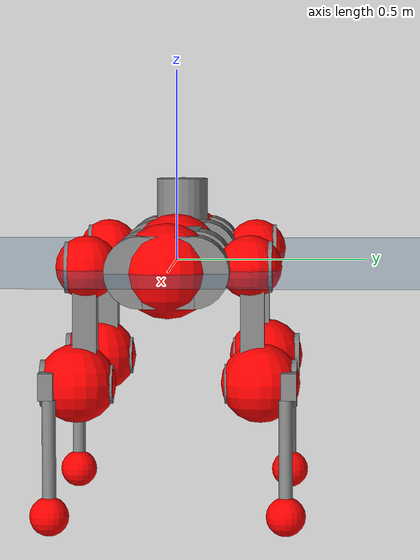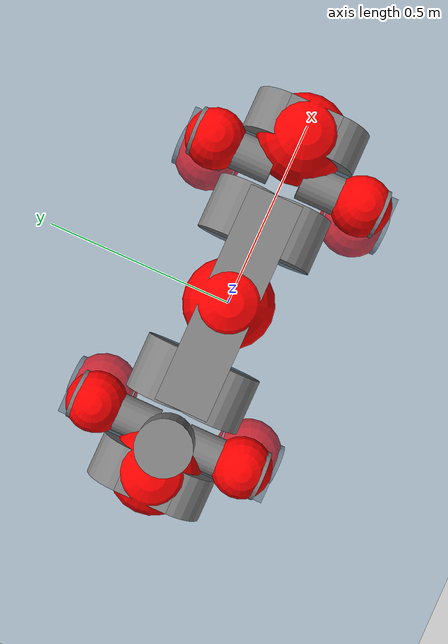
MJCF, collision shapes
<mujoco model="anymal_c">
  <compiler angle="radian" assetdir="assets" balanceinertia="true" inertiafromgeom="false"/>

  <option timestep="0.005" density="1.2" viscosity="2e-05"/>

  <size nkey="1"/>

  <visual>
    <quality shadowsize="8192"/>
    <map shadowclip="0.5"/>
  </visual>

  <default>
    <default class="/">
      <material specular="0" shininess="0.25"/>
      <geom contype="0" conaffinity="0" group="1" solref="-1000 -80"/>
      <site size="0.01 0.005 0.005" group="5"/>
      <general forcelimited="true" forcerange="-80 80" biastype="affine" gainprm="80" biasprm="0 -80 -2"/>
      <default class="anymal_c">
        <joint armature="0.01" damping="0.01" frictionloss="0.1"/>
        <default class="visual">
          <geom type="mesh" group="2"/>
          <default class="visual_zflip"/>
        </default>
        <default class="collision">
          <geom type="cylinder" group="3"/>
          <default class="foot">
            <geom size="0.03 0 0" type="sphere" condim="6" priority="1" friction="0.8 0.02 0.01" solimp="0.015 1 0.03"/>
          </default>
        </default>
      </default>
      <default class="reward_collision_sphere">
        <geom group="5" rgba="1 0 0 1"/>
      </default>
    </default>
  </default>

  <asset>
    <texture type="skybox" colorspace="auto" name="//unnamed_texture_0" builtin="gradient" rgb1="0.95 0.95 0.95" rgb2="0.95 0.95 0.95" width="100" height="600"/>
    <texture type="2d" colorspace="auto" name="texplane" builtin="checker" rgb1="0.345 0.575 0.748" rgb2="0.345 0.575 0.748" markrgb="1 1 1" width="512" height="512"/>
    <texture type="2d" colorspace="linear" name="base" file="base.png"/>
    <texture type="2d" colorspace="linear" name="top_shell" file="top_shell.png"/>
    <texture type="2d" colorspace="linear" name="bottom_shell" file="bottom_shell.png"/>
    <texture type="2d" colorspace="linear" name="remote" file="remote.png"/>
    <texture type="2d" colorspace="linear" name="hatch" file="hatch.png"/>
    <texture type="2d" colorspace="linear" name="handle" file="handle.png"/>
    <texture type="2d" colorspace="linear" name="face" file="face.png"/>
    <texture type="2d" colorspace="linear" name="battery" file="battery.png"/>
    <texture type="2d" colorspace="linear" name="lidar_cage" file="lidar_cage.png"/>
    <texture type="2d" colorspace="linear" name="depth_camera" file="depth_camera.png"/>
    <texture type="2d" colorspace="linear" name="wide_angle_camera" file="wide_angle_camera.png"/>
    <texture type="2d" colorspace="linear" name="lidar" file="lidar.png"/>
    <texture type="2d" colorspace="linear" name="drive" file="drive.png"/>
    <texture type="2d" colorspace="linear" name="hip_l" file="hip_l.png"/>
    <texture type="2d" colorspace="linear" name="shank_l" file="shank_l.png"/>
    <texture type="2d" colorspace="linear" name="foot" file="foot.png"/>
    <texture type="2d" colorspace="linear" name="thigh" file="thigh.png"/>
    <texture type="2d" colorspace="linear" name="shank_r" file="shank_r.png"/>
    <texture type="2d" colorspace="linear" name="hip_r" file="hip_r.png"/>
    <material name="MatPlane" class="/" texture="texplane" texuniform="true" texrepeat="2 2" specular="0.9" shininess="0.5"/>
    <material name="black_plastic" class="/" rgba="0.007 0.007 0.007 1"/>
    <material name="green" class="/" rgba="0.052 0.178 0.033 1"/>
    <material name="red" class="/" rgba="0.178 0.006 0.005 1"/>
    <material name="yellow" class="/" rgba="0.178 0.119 0.006 1"/>
    <material name="lwl" class="/" rgba="0.8 0.8 0.8 1"/>
    <material name="base" class="/" texture="base"/>
    <material name="top_shell" class="/" texture="top_shell"/>
    <material name="bottom_shell" class="/" texture="bottom_shell"/>
    <material name="hip_l" class="/" texture="hip_l"/>
    <material name="thigh" class="/" texture="thigh"/>
    <material name="shank_l" class="/" texture="shank_l"/>
    <material name="foot" class="/" texture="foot"/>
    <material name="hip_r" class="/" texture="hip_r"/>
    <material name="shank" class="/" texture="shank_r"/>
    <material name="hatch" class="/" texture="hatch"/>
    <material name="remote" class="/" texture="remote"/>
    <material name="handle" class="/" texture="handle"/>
    <material name="face" class="/" texture="face"/>
    <material name="depth_camera" class="/" texture="depth_camera"/>
    <material name="wide_angle_camera" class="/" texture="wide_angle_camera"/>
    <material name="battery" class="/" texture="battery"/>
    <material name="lidar_cage" class="/" texture="lidar_cage"/>
    <material name="lidar" class="/" texture="lidar"/>
    <material name="drive" class="/" texture="drive"/>
    <mesh name="base_0" class="/" file="base_0.obj"/>
    <mesh name="base_1" class="/" file="base_1.obj"/>
    <mesh name="base_2" class="/" file="base_2.obj"/>
    <mesh name="base_3" class="/" file="base_3.obj"/>
    <mesh name="base_4" class="/" file="base_4.obj"/>
    <mesh name="base_5" class="/" file="base_5.obj"/>
    <mesh name="top_shell" class="/" file="top_shell.obj"/>
    <mesh name="bottom_shell" class="/" file="bottom_shell.obj"/>
    <mesh name="remote" class="/" file="remote.obj"/>
    <mesh name="handle" class="/" file="handle.obj"/>
    <mesh name="face" class="/" file="face.obj"/>
    <mesh name="wide_angle_camera" class="/" file="wide_angle_camera.obj"/>
    <mesh name="depth_camera" class="/" file="depth_camera.obj"/>
    <mesh name="battery" class="/" file="battery.obj"/>
    <mesh name="lidar_cage" class="/" file="lidar_cage.obj"/>
    <mesh name="lidar" class="/" file="lidar.obj"/>
    <mesh name="drive" class="/" file="drive.obj"/>
    <mesh name="hip_l" class="/" file="hip_l.obj"/>
    <mesh name="thigh" class="/" file="thigh.obj"/>
    <mesh name="shank_l" class="/" file="shank_l.obj"/>
    <mesh name="foot" class="/" file="foot.obj"/>
    <mesh name="hip_r" class="/" file="hip_r.obj"/>
    <mesh name="hatch" class="/" file="hatch.obj"/>
    <mesh name="shank_r" class="/" file="shank_r.obj"/>
  </asset>

  <worldbody>
    <geom name="floor" class="/" size="100 100 0.125" type="plane" group="0" material="MatPlane"/>
    <light name="toplight_shadow" class="/" pos="0 0 5" dir="0.0990148 0.0990148 -0.990148" type="directional" ambient="0.04 0.04 0.04" diffuse="0.55 0.55 0.55" specular="0.12 0.12 0.12"/>
    <light name="toplight_fill" class="/" pos="0 0 5" dir="0.0990148 0.0990148 -0.990148" type="directional" castshadow="false" ambient="0.04 0.04 0.04" diffuse="0.3 0.3 0.3" specular="0.08 0.08 0.08"/>
    <body name="trunk" childclass="anymal_c" pos="-0.000345299 -0.00188882 0.000687848" quat="1 0.000703611 -3.37859e-06 -0.00065032">
      <inertial pos="0.00102042 -0.00266878 0.0528135" quat="0.500422 0.499765 0.495709 0.504069" mass="19.215" diaginertia="0.691904 0.444372 0.265881"/>
      <joint name="//unnamed_joint_0" type="free" armature="0" damping="0" frictionloss="0"/>
      <geom name="//unnamed_geom_1" class="visual" material="green" mesh="base_0"/>
      <geom name="//unnamed_geom_2" class="visual" material="yellow" mesh="base_1"/>
      <geom name="//unnamed_geom_3" class="visual" material="red" mesh="base_2"/>
      <geom name="//unnamed_geom_4" class="visual" material="black_plastic" mesh="base_3"/>
      <geom name="//unnamed_geom_5" class="visual" material="lwl" mesh="base_4"/>
      <geom name="//unnamed_geom_6" class="visual" material="base" mesh="base_5"/>
      <geom name="trunk_1" class="collision" size="0.290961 0.0702321 0.0902984" type="box"/>
      <geom name="trunk_2" class="collision" size="0.0902984 0.0727403" pos="0.223837 0.0657576 0" quat="0.707107 0 0.707107 0"/>
      <geom name="trunk_3" class="collision" size="0.0902984 0.0727403" pos="-0.223837 0.0657576 0" quat="0.707107 0 0.707107 0"/>
      <geom name="trunk_4" class="collision" size="0.0902984 0.0727403" pos="0.223837 -0.0657576 0" quat="0.707107 0 0.707107 0"/>
      <geom name="trunk_5" class="collision" size="0.0902984 0.0727403" pos="-0.223837 -0.0657576 0" quat="0.707107 0 0.707107 0"/>
      <geom name="//unnamed_geom_12" class="visual" material="top_shell" mesh="top_shell"/>
      <geom name="//unnamed_geom_13" class="visual" material="bottom_shell" mesh="bottom_shell"/>
      <geom name="//unnamed_geom_14" class="visual" material="remote" mesh="remote"/>
      <geom name="//unnamed_geom_15" class="visual" material="handle" mesh="handle"/>
      <geom name="//unnamed_geom_16" class="visual" pos="0.426577 0 0" quat="1 0 0 0" material="face" mesh="face"/>
      <geom name="trunk_6" class="collision" size="0.0551823 0.0702321 0.0902984" pos="0.48318 0 0" type="box"/>
      <geom name="//unnamed_geom_18" class="collision" size="0.0902984 0.0551823" pos="0.48318 0.0657576 0" quat="0.707107 0 0.707107 0"/>
      <geom name="//unnamed_geom_19" class="collision" size="0.0902984 0.0551823" pos="0.48318 -0.0657576 0" quat="0.707107 0 0.707107 0"/>
      <geom name="//unnamed_geom_20" class="visual" pos="0.475102 0 -0.0305026" quat="0.965926 0 0.258819 0" material="depth_camera" mesh="depth_camera"/>
      <geom name="//unnamed_geom_21" class="visual" pos="0.527947 0 0.01559" material="wide_angle_camera" mesh="wide_angle_camera"/>
      <geom name="//unnamed_geom_22" class="visual_zflip" pos="-0.426577 0 0" quat="0 0 0 1" material="face" mesh="face"/>
      <geom name="trunk_7" class="collision" size="0.0551823 0.0702321 0.0902984" pos="-0.48318 0 0" quat="0 0 0 1" type="box"/>
      <geom name="//unnamed_geom_24" class="collision" size="0.0902984 0.0551823" pos="-0.48318 -0.0657576 0" quat="0 -0.707107 0 0.707107"/>
      <geom name="//unnamed_geom_25" class="collision" size="0.0902984 0.0551823" pos="-0.48318 0.0657576 0" quat="0 -0.707107 0 0.707107"/>
      <geom name="//unnamed_geom_26" class="visual" pos="-0.475102 0 -0.0305026" quat="0 -0.258819 0 0.965926" material="depth_camera" mesh="depth_camera"/>
      <geom name="//unnamed_geom_27" class="visual_zflip" pos="-0.527947 0 0.01559" quat="0 0 0 1" material="wide_angle_camera" mesh="wide_angle_camera"/>
      <geom name="//unnamed_geom_28" class="visual" material="battery" mesh="battery"/>
      <geom name="//unnamed_geom_29" class="visual" pos="0 0.070649 0.0301598" quat="0.683013 -0.183013 0.183013 0.683013" material="depth_camera" mesh="depth_camera"/>
      <geom name="//unnamed_geom_30" class="visual" pos="0 -0.070649 0.0301598" quat="0.683013 0.183013 0.183013 -0.683013" material="depth_camera" mesh="depth_camera"/>
      <geom name="//unnamed_geom_31" class="visual" pos="-0.374606 0 0.0765439" quat="1 0 0 0" material="lidar_cage" mesh="lidar_cage"/>
      <geom name="trunk_8" class="collision" size="0.0702321 0.0601989" pos="-0.374606 0 0.139029"/>
      <geom name="//unnamed_geom_33" class="visual" pos="-0.374606 -3.52573e-05 0.148089" quat="0.707107 0 0 -0.707107" material="lidar" mesh="lidar"/>
      <geom name="//unnamed_geom_34" class="visual" pos="0.308638 0.0977333 -1.75984e-09" quat="0.258819 0.965926 0 0" material="drive" mesh="drive"/>
      <geom name="//unnamed_geom_35" class="visual" pos="0.308638 -0.0977333 1.75984e-09" quat="0.258819 -0.965926 0 0" material="drive" mesh="drive"/>
      <geom name="//unnamed_geom_36" class="visual" pos="-0.308638 0.0977333 1.75984e-09" quat="0 0 0.965926 -0.258819" material="drive" mesh="drive"/>
      <geom name="//unnamed_geom_37" class="visual" pos="-0.308638 -0.0977333 -1.75984e-09" quat="0 0 -0.965926 -0.258819" material="drive" mesh="drive"/>
      <geom name="//unnamed_geom_38" class="visual" pos="0.11938 0 0.0760232" quat="1 0 0 0" material="hatch" mesh="hatch"/>
      <geom name="//unnamed_geom_39" class="reward_collision_sphere" size="0.120398"/>
      <geom name="//unnamed_geom_40" class="reward_collision_sphere" size="0.120398" pos="0.463112 0 0"/>
      <geom name="//unnamed_geom_41" class="reward_collision_sphere" size="0.120398" pos="-0.463112 0 0"/>
      <site name="imu" pos="0.257678 0.00943549 0.0498493" size="0.0100332"/>
      <camera name="track" pos="0 -1.87879 0" quat="0.707107 0.707107 0 0" mode="trackcom"/>
      <camera name="ego_camera" pos="0.463112 0 -0.0416565" quat="-0.5 -0.5 0.5 0.5"/>
      <body name="LF_HIP" pos="0.30844 0.0980726 9.25249e-05" quat="0.258763 0.965941 -5.5607e-06 -5.44668e-06">
        <inertial pos="0.0585082 -0.0166158 -0.00879052" quat="-0.139705 0.707334 -0.133532 0.679949" mass="2.78926" diaginertia="0.00665387 0.00352835 0.00395464"/>
        <joint name="LF_HAA" pos="0 0 0" axis="0.999998 0.00152797 0.00135554" stiffness="9.39555e-05" range="-0.736709 0.511998" armature="0.00970748" damping="0.0128291" frictionloss="0.100088"/>
        <geom name="//unnamed_geom_42" class="visual" pos="0 -0.000103524 1.70037e-05" quat="0.258819 -0.965926 0 0" material="hip_l" mesh="hip_l"/>
        <geom name="//unnamed_geom_43" class="visual" pos="0.0616453 -0.073551 -0.0432193" quat="0.183013 -0.683013 0.683013 0.183013" material="drive" mesh="drive"/>
        <geom name="//unnamed_geom_44" class="collision" size="0.0501658 0.0702321" pos="0.0616453 -0.011235 -0.00719096" quat="-0.353553 -0.612372 0.612372 -0.353553"/>
        <body name="LF_THIGH" pos="0.0645363 -0.0677735 -0.0445763" quat="0.182837 -0.68378 0.682168 0.183475">
          <inertial pos="0.0316492 0.00266494 -0.254848" quat="0.993168 -0.00511035 -0.0806042 0.0842312" mass="3.13742" diaginertia="0.0337266 0.0225936 0.00513343"/>
          <joint name="LF_HFE" pos="0 0 0" axis="0.99994 -0.000252567 -0.0109499" stiffness="0.00225438" range="-3.18529 3.08376" armature="0.0113346" damping="0.00343757" frictionloss="0.0945076"/>
          <geom name="//unnamed_geom_45" class="visual" pos="0.00178552 2.81356e-06 0" quat="0.707107 0 0 -0.707107" material="thigh" mesh="thigh"/>
          <geom name="//unnamed_geom_46" class="collision" size="0.0652155 0.0401326" pos="0.0411655 0 0" quat="0.5 0.5 -0.5 -0.5"/>
          <geom name="//unnamed_geom_47" class="collision" size="0.0376243 0.0300995 0.141782" pos="0.0308741 0 -0.147166" quat="0.707107 0 0 -0.707107" type="box"/>
          <geom name="//unnamed_geom_48" class="visual" pos="0.103222 0 -0.296803" quat="1 0 0 0" material="drive" mesh="drive"/>
          <geom name="//unnamed_geom_49" class="collision" size="0.0501658 0.0702321" pos="0.0311828 0 -0.296803" quat="0.707107 0 0.707107 0"/>
          <geom name="//unnamed_geom_50" class="reward_collision_sphere" size="0.0802652" pos="0.0257284 0 0"/>
          <body name="LF_SHANK" pos="0.102934 -0.000743918 -0.294804" quat="1 2.82942e-05 -8.04555e-05 -4.5519e-05">
            <inertial pos="0.00289634 -0.0590912 -0.0865686" quat="0.993115 -0.114415 -0.000327698 -0.0251223" mass="0.578517" diaginertia="0.0115207 0.00684366 0.00134784"/>
            <joint name="LF_KFE" pos="0 0 0" axis="1 -0.000269489 0.000413488" range="-3.08808 3.18883" armature="0.00944111" damping="0" frictionloss="0.0974618"/>
            <geom name="//unnamed_geom_51" class="visual" pos="0.000582219 0.00310442 0" quat="0.707107 0 0 -0.707107" material="shank_l" mesh="shank_l"/>
            <geom name="LF_kfe_act" class="collision" size="0.0601989 0.0200663" pos="0.0205827 0 0" quat="0.5 0.5 -0.5 -0.5"/>
            <geom name="//unnamed_geom_53" class="collision" size="0.0576896 0.0338619 0.019063" pos="0.0205827 -0.0540142 0" quat="0.5 0.5 -0.5 -0.5" type="box"/>
            <geom name="//unnamed_geom_54" class="visual" pos="0.0134301 -0.0816193 -0.351967" quat="0.382683 0 0 -0.92388" material="foot" mesh="foot"/>
            <geom name="LF_calf" class="collision" size="0.017558 0.14172" pos="0.0134302 -0.0826197 -0.175983" quat="0.707107 0 0 -0.707107"/>
            <geom name="LF_foot" class="foot" size="0.030626" pos="0.0134302 -0.0826197 -0.328535" quat="0.707107 0 0 -0.707107"/>
            <geom name="//unnamed_geom_57" class="reward_collision_sphere" size="0.100332" pos="-0.0514568 0 0"/>
            <geom name="//unnamed_geom_58" class="reward_collision_sphere" size="0.0501658" pos="0.0134302 -0.0826197 -0.328535"/>
            <site name="LF_foot" class="foot" pos="0.0134302 -0.0826197 -0.328535" quat="0.707107 0 0 -0.707107" size="0.0100332"/>
          </body>
        </body>
      </body>
      <body name="RF_HIP" pos="0.30641 -0.0988134 -0.0020343" quat="0.25875 -0.965944 0.000315885 0.000154438">
        <inertial pos="0.0591495 0.0148433 -0.00908468" quat="0.135387 0.671316 0.13779 0.715555" mass="2.82852" diaginertia="0.00661975 0.00359563 0.00403052"/>
        <joint name="RF_HAA" pos="0 0 0" axis="0.999966 0.00829309 0.000427204" range="-0.494234 0.776197" armature="0.00983651" damping="0.00877089" frictionloss="0.0960824"/>
        <geom name="//unnamed_geom_59" class="visual" pos="0 0.000103523 1.70036e-05" quat="0.258819 0.965926 0 0" material="hip_r" mesh="hip_r"/>
        <geom name="//unnamed_geom_60" class="visual" pos="0.0616453 0.073551 -0.0432193" quat="0.183013 0.683013 0.683013 -0.183013" material="drive" mesh="drive"/>
        <geom name="//unnamed_geom_61" class="collision" size="0.0501658 0.0702321" pos="0.0616453 0.011235 -0.00719096" quat="-0.353553 0.612372 0.612372 0.353553"/>
        <body name="RF_THIGH" pos="0.061973 0.0696376 -0.0460659" quat="0.18306 0.682809 0.683095 -0.183416">
          <inertial pos="0.0326607 -0.00188308 -0.25294" quat="0.992585 -0.00438159 -0.081316 0.0902454" mass="3.0713" diaginertia="0.034111 0.0219036 0.00513335"/>
          <joint name="RF_HFE" pos="0 0 0" axis="0.999995 0.00320576 -0.00056268" stiffness="0.0136025" range="-3.15251 3.13147" armature="0.00877291" damping="0.0241479" frictionloss="0.0923284"/>
          <geom name="//unnamed_geom_62" class="visual" pos="0.00178552 2.81356e-06 0" quat="0.707107 0 0 -0.707107" material="thigh" mesh="thigh"/>
          <geom name="//unnamed_geom_63" class="collision" size="0.0652155 0.0401326" pos="0.0411655 0 0" quat="0.5 0.5 0.5 0.5"/>
          <geom name="//unnamed_geom_64" class="collision" size="0.0376243 0.0300995 0.141782" pos="0.0308741 0 -0.147166" quat="0.707107 0 0 0.707107" type="box"/>
          <geom name="//unnamed_geom_65" class="visual" pos="0.103222 0 -0.296803" quat="1 0 0 0" material="drive" mesh="drive"/>
          <geom name="//unnamed_geom_66" class="collision" size="0.0501658 0.0702321" pos="0.0311828 0 -0.296803" quat="0.707107 0 0.707107 0"/>
          <geom name="//unnamed_geom_67" class="reward_collision_sphere" size="0.0802652" pos="0.0257284 0 0"/>
          <body name="RF_SHANK" pos="0.104155 0.000656611 -0.294738" quat="1 0.000321266 0.000261185 0.00037257">
            <inertial pos="0.00427184 0.0594112 -0.0833648" quat="0.992863 0.116547 -0.00085073 0.0252703" mass="0.613278" diaginertia="0.0121333 0.00716215 0.00138938"/>
            <joint name="RF_KFE" pos="0 0 0" axis="0.999996 -0.00193137 0.00201752" range="-3.13631 3.11853" armature="0.0104873" damping="0" frictionloss="0.101682"/>
            <geom name="//unnamed_geom_68" class="visual" pos="0.000582216 -0.00310441 0" quat="0.707107 0 0 0.707107" material="shank" mesh="shank_r"/>
            <geom name="RF_kfe_act" class="collision" size="0.0601989 0.0200663" pos="0.0205827 0 0" quat="0.5 0.5 0.5 0.5"/>
            <geom name="//unnamed_geom_70" class="collision" size="0.0576896 0.0338619 0.019063" pos="0.0205827 0.0540142 0" quat="0.5 0.5 0.5 0.5" type="box"/>
            <geom name="//unnamed_geom_71" class="visual" pos="0.0134304 0.0816193 -0.351967" quat="0.382683 0 0 0.92388" material="foot" mesh="foot"/>
            <geom name="RF_calf" class="collision" size="0.017558 0.14172" pos="0.0134302 0.0826197 -0.175983" quat="0.707107 0 0 0.707107"/>
            <geom name="RF_foot" class="foot" size="0.0275029" pos="0.0134302 0.0826197 -0.328535" quat="0.707107 0 0 0.707107"/>
            <geom name="//unnamed_geom_74" class="reward_collision_sphere" size="0.100332" pos="-0.0514568 0 0"/>
            <geom name="//unnamed_geom_75" class="reward_collision_sphere" size="0.0501658" pos="0.0134302 0.0826197 -0.328535"/>
            <site name="RF_foot" class="foot" pos="0.0134302 0.0826197 -0.328535" quat="0.707107 0 0 0.707107" size="0.0100332"/>
          </body>
        </body>
      </body>
      <body name="LH_HIP" pos="-0.308045 0.0989736 0.00253532" quat="-2.45446e-06 -3.03039e-05 0.965959 -0.258694">
        <inertial pos="0.0573933 0.0152639 -0.00724065" quat="0.136817 0.675287 0.128929 0.713195" mass="2.72144" diaginertia="0.00686094 0.00356991 0.00409792"/>
        <joint name="LH_HAA" pos="0 0 0" axis="0.999998 -0.00127262 0.00164234" stiffness="0.00649803" range="-0.441726 0.732148" armature="0.0105701" damping="0.00848544" frictionloss="0.112365"/>
        <geom name="//unnamed_geom_76" class="visual" pos="0 0.000103523 1.70036e-05" quat="-0.258819 -0.965926 0 0" material="hip_r" mesh="hip_r"/>
        <geom name="//unnamed_geom_77" class="visual" pos="0.0616453 0.073551 -0.0432193" quat="0.183013 0.683013 0.683013 -0.183013" material="drive" mesh="drive"/>
        <geom name="//unnamed_geom_78" class="collision" size="0.0501658 0.0702321" pos="0.0616453 0.011235 -0.00719096" quat="-0.353553 0.612372 0.612372 0.353553"/>
        <body name="LH_THIGH" pos="0.0611088 0.0682752 -0.0432106" quat="0.18414 0.683564 0.682225 -0.182762">
          <inertial pos="0.0322951 0.00241043 -0.256088" quat="0.992932 -0.0135369 -0.0850929 0.0816178" mass="2.98872" diaginertia="0.0343359 0.0221461 0.00528405"/>
          <joint name="LH_HFE" pos="0 0 0" axis="0.999916 -0.0121356 -0.00463409" stiffness="0.00365514" range="-3.12666 3.12995" armature="0.010955" damping="0.0215746" frictionloss="0.0943181"/>
          <geom name="//unnamed_geom_79" class="visual" pos="0.00178552 2.81356e-06 0" quat="0.707107 0 0 -0.707107" material="thigh" mesh="thigh"/>
          <geom name="//unnamed_geom_80" class="collision" size="0.0652155 0.0401326" pos="0.0411655 0 0" quat="0.5 0.5 -0.5 -0.5"/>
          <geom name="//unnamed_geom_81" class="collision" size="0.0376243 0.0300995 0.141782" pos="0.0308741 0 -0.147166" quat="0.707107 0 0 -0.707107" type="box"/>
          <geom name="//unnamed_geom_82" class="visual" pos="0.103222 0 -0.296803" quat="1 0 0 0" material="drive" mesh="drive"/>
          <geom name="//unnamed_geom_83" class="collision" size="0.0501658 0.0702321" pos="0.0311828 0 -0.296803" quat="0.707107 0 0.707107 0"/>
          <geom name="//unnamed_geom_84" class="reward_collision_sphere" size="0.0802652" pos="0.0257284 0 0"/>
          <body name="LH_SHANK" pos="0.103019 0.000166534 -0.295606" quat="1 -5.26935e-05 3.81705e-05 -0.000198811">
            <inertial pos="0.0054964 0.0599954 -0.0837458" quat="0.993024 0.115235 -0.000523235 0.0249826" mass="0.592497" diaginertia="0.0112832 0.00649152 0.00131377"/>
            <joint name="LH_KFE" pos="0 0 0" axis="0.999971 0.00533774 -0.00547365" stiffness="0.00796871" range="-3.09006 3.13437" armature="0.0113481" damping="0.0189052" frictionloss="0.0916442"/>
            <geom name="//unnamed_geom_85" class="visual" pos="0.000582216 -0.00310441 0" quat="-0.707107 0 0 -0.707107" material="shank" mesh="shank_r"/>
            <geom name="LH_kfe_act" class="collision" size="0.0601989 0.0200663" pos="0.0205827 0 0" quat="0.5 0.5 -0.5 -0.5"/>
            <geom name="//unnamed_geom_87" class="collision" size="0.0576896 0.0338619 0.019063" pos="0.0205827 0.0540142 0" quat="0.5 0.5 -0.5 -0.5" type="box"/>
            <geom name="//unnamed_geom_88" class="visual" pos="0.0134304 0.0816193 -0.351967" quat="-0.382683 0 0 -0.92388" material="foot" mesh="foot"/>
            <geom name="LH_calf" class="collision" size="0.017558 0.14172" pos="0.0134302 0.0826197 -0.175983" quat="0.707107 0 0 -0.707107"/>
            <geom name="LH_foot" class="foot" size="0.0300522" pos="0.0134302 0.0826197 -0.328535" quat="0.707107 0 0 -0.707107"/>
            <geom name="//unnamed_geom_91" class="reward_collision_sphere" size="0.100332" pos="-0.0514568 0 0"/>
            <geom name="//unnamed_geom_92" class="reward_collision_sphere" size="0.0501658" pos="0.0134302 0.0826197 -0.328535"/>
            <site name="LH_foot" class="foot" pos="0.0134302 0.0826197 -0.328535" quat="0.707107 0 0 -0.707107" size="0.0100332"/>
          </body>
        </body>
      </body>
      <body name="RH_HIP" pos="-0.311163 -0.0981622 0.000823184" quat="0.000239072 0.000667395 -0.966234 -0.257666">
        <inertial pos="0.0586521 -0.0137676 -0.00787452" quat="-0.128168 0.710118 -0.135325 0.678964" mass="2.77346" diaginertia="0.00668268 0.00353197 0.00411408"/>
        <joint name="RH_HAA" pos="0 0 0" axis="1 0.000185988 -0.000329513" stiffness="0.00639996" range="-0.701059 0.533369" armature="0.0113977" damping="0.013119" frictionloss="0.108133"/>
        <geom name="//unnamed_geom_93" class="visual" pos="0 -0.000103524 1.70037e-05" quat="-0.258819 0.965926 0 0" material="hip_l" mesh="hip_l"/>
        <geom name="//unnamed_geom_94" class="visual" pos="0.0616453 -0.073551 -0.0432193" quat="-0.183013 0.683013 -0.683013 -0.183013" material="drive" mesh="drive"/>
        <geom name="//unnamed_geom_95" class="collision" size="0.0501658 0.0702321" pos="0.0616453 -0.011235 -0.00719096" quat="0.353553 0.612372 -0.612372 0.353553"/>
        <body name="RH_THIGH" pos="0.0595525 -0.0653411 -0.0435385" quat="-0.183037 0.683086 -0.682941 -0.182986">
          <inertial pos="0.0318316 -0.00240571 -0.255904" quat="0.993181 -0.00883603 -0.0821748 0.0822269" mass="3.03142" diaginertia="0.0346506 0.0217997 0.00494345"/>
          <joint name="RH_HFE" pos="0 0 0" axis="0.999991 -0.00249454 0.00349468" stiffness="0.00858886" range="-3.1368 3.19313" armature="0.00869861" damping="0.0207823" frictionloss="0.0998073"/>
          <geom name="//unnamed_geom_96" class="visual" pos="0.00178552 2.81356e-06 0" quat="0.707107 0 0 -0.707107" material="thigh" mesh="thigh"/>
          <geom name="//unnamed_geom_97" class="collision" size="0.0652155 0.0401326" pos="0.0411655 0 0" quat="0.5 0.5 0.5 0.5"/>
          <geom name="//unnamed_geom_98" class="collision" size="0.0376243 0.0300995 0.141782" pos="0.0308741 0 -0.147166" quat="0.707107 0 0 0.707107" type="box"/>
          <geom name="//unnamed_geom_99" class="visual" pos="0.103222 0 -0.296803" quat="1 0 0 0" material="drive" mesh="drive"/>
          <geom name="//unnamed_geom_100" class="collision" size="0.0501658 0.0702321" pos="0.0311828 0 -0.296803" quat="0.707107 0 0.707107 0"/>
          <geom name="//unnamed_geom_101" class="reward_collision_sphere" size="0.0802652" pos="0.0257284 0 0"/>
          <body name="RH_SHANK" pos="0.104045 -0.000377215 -0.296451" quat="1 -6.79452e-05 -2.68215e-05 -7.87313e-05">
            <inertial pos="0.00449652 -0.0585411 -0.0837254" quat="0.992849 -0.116551 -0.000873468 -0.0257958" mass="0.608696" diaginertia="0.01162 0.00682118 0.00137654"/>
            <joint name="RH_KFE" pos="0 0 0" axis="0.999988 0.00184254 -0.0044419" range="-3.0737 3.14766" armature="0.0101478" damping="0.0154235" frictionloss="0.105985"/>
            <geom name="//unnamed_geom_102" class="visual" pos="0.000582219 0.00310442 0" quat="0.707107 0 0 -0.707107" material="shank_l" mesh="shank_l"/>
            <geom name="RH_kfe_act" class="collision" size="0.0601989 0.0200663" pos="0.0205827 0 0" quat="0.5 0.5 0.5 0.5"/>
            <geom name="//unnamed_geom_104" class="collision" size="0.0576896 0.0338619 0.019063" pos="0.0205827 -0.0540142 0" quat="0.5 0.5 0.5 0.5" type="box"/>
            <geom name="//unnamed_geom_105" class="visual" pos="0.0134301 -0.0816193 -0.351967" quat="0.382683 0 0 -0.92388" material="foot" mesh="foot"/>
            <geom name="RH_calf" class="collision" size="0.017558 0.14172" pos="0.0134302 -0.0826197 -0.175983" quat="0.707107 0 0 0.707107"/>
            <geom name="RH_foot" class="foot" size="0.0314422" pos="0.0134302 -0.0826197 -0.328535" quat="0.707107 0 0 0.707107"/>
            <geom name="//unnamed_geom_108" class="reward_collision_sphere" size="0.100332" pos="-0.0514568 0 0"/>
            <geom name="//unnamed_geom_109" class="reward_collision_sphere" size="0.0501658" pos="0.0134302 -0.0826197 -0.328535"/>
            <site name="RH_foot" class="foot" pos="0.0134302 -0.0826197 -0.328535" quat="0.707107 0 0 0.707107" size="0.0100332"/>
          </body>
        </body>
      </body>
    </body>
  </worldbody>

  <contact>
    <pair class="/" geom1="floor" geom2="LF_foot" name="//unnamed_contact_0"/>
    <pair class="/" geom1="floor" geom2="RF_foot" name="//unnamed_contact_1"/>
    <pair class="/" geom1="floor" geom2="LH_foot" name="//unnamed_contact_2"/>
    <pair class="/" geom1="floor" geom2="RH_foot" name="//unnamed_contact_3"/>
  </contact>

  <actuator>
    <general name="LF_HAA" class="/" joint="LF_HAA" forcerange="-83.8307 83.8307" gainprm="80.3879" biasprm="0 -80.3879 -2.02075"/>
    <general name="LF_HFE" class="/" joint="LF_HFE" forcerange="-80.2502 80.2502" gainprm="80.3879" biasprm="0 -80.3879 -2.02075"/>
    <general name="LF_KFE" class="/" joint="LF_KFE" forcerange="-79.9996 79.9996" gainprm="80.3879" biasprm="0 -80.3879 -2.02075"/>
    <general name="RF_HAA" class="/" joint="RF_HAA" forcerange="-78.7728 78.7728" gainprm="80.3879" biasprm="0 -80.3879 -2.02075"/>
    <general name="RF_HFE" class="/" joint="RF_HFE" forcerange="-82.5018 82.5018" gainprm="80.3879" biasprm="0 -80.3879 -2.02075"/>
    <general name="RF_KFE" class="/" joint="RF_KFE" forcerange="-73.7594 73.7594" gainprm="80.3879" biasprm="0 -80.3879 -2.02075"/>
    <general name="LH_HAA" class="/" joint="LH_HAA" forcerange="-83.2867 83.2867" gainprm="80.3879" biasprm="0 -80.3879 -2.02075"/>
    <general name="LH_HFE" class="/" joint="LH_HFE" forcerange="-81.4073 81.4073" gainprm="80.3879" biasprm="0 -80.3879 -2.02075"/>
    <general name="LH_KFE" class="/" joint="LH_KFE" forcerange="-79.5596 79.5596" gainprm="80.3879" biasprm="0 -80.3879 -2.02075"/>
    <general name="RH_HAA" class="/" joint="RH_HAA" forcerange="-79.568 79.568" gainprm="80.3879" biasprm="0 -80.3879 -2.02075"/>
    <general name="RH_HFE" class="/" joint="RH_HFE" forcerange="-80.2189 80.2189" gainprm="80.3879" biasprm="0 -80.3879 -2.02075"/>
    <general name="RH_KFE" class="/" joint="RH_KFE" forcerange="-88.7639 88.7639" gainprm="80.3879" biasprm="0 -80.3879 -2.02075"/>
  </actuator>

  <sensor>
    <gyro site="imu" name="imu_angular_velocity"/>
    <velocimeter site="imu" name="imu_linear_velocity"/>
    <framelinvel objtype="site" objname="LF_foot" name="LF_foot_global_linear_velocity"/>
    <framelinvel objtype="site" objname="RF_foot" name="RF_foot_global_linear_velocity"/>
    <framelinvel objtype="site" objname="LH_foot" name="LH_foot_global_linear_velocity"/>
    <framelinvel objtype="site" objname="RH_foot" name="RH_foot_global_linear_velocity"/>
  </sensor>

  <keyframe>
    <key name="home" qpos="0 0 0.55 1 0 0 0 0 0.4 -0.8 0 -0.4 0.8 0 -0.4 0.8 0 0.4 -0.8"/>
  </keyframe>
</mujoco>
